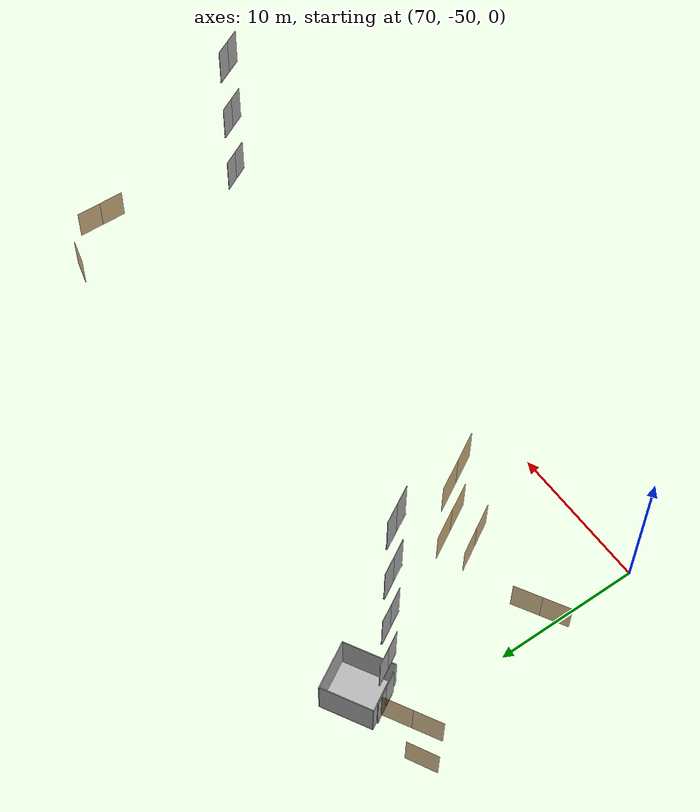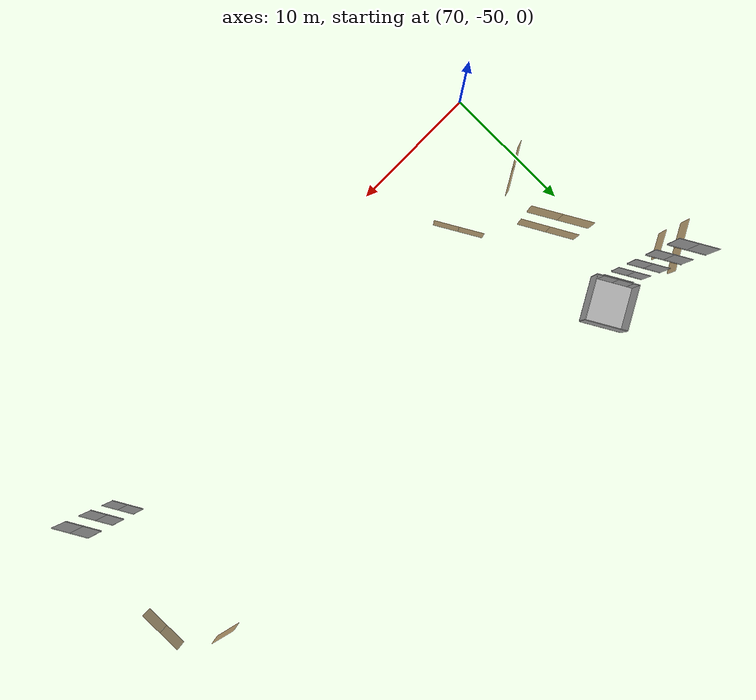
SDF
<sdf version="1.7">
 <world name="sim_world">
  <model name="puerta20">
   <pose>113.41983175228208 -37.8717021657419 0.0 0 0 -1.5573486832499999</pose>
   <link name="right">
    <pose>0.8997770784323755 0 1.11 0 0 0</pose>
    <visual name="right_visual">
     <geometry><box><size>1.789554156864751 0.03 2.2</size></box></geometry>
     <material>
      <ambient>0.5 0.25 0 0.6</ambient>
      <diffuse>0.5 0.25 0 0.6</diffuse>
      <pbr><metal><metalness>0.0</metalness></metal></pbr>
     </material>
    </visual>
    <collision name="right_collision">
     <geometry><box><size>1.789554156864751 0.03 2.2</size></box></geometry>
     <surface><contact><collide_bitmask>0x02</collide_bitmask></contact></surface>
    </collision>
    <inertial>
     <mass>50.0</mass>
     <inertia><ixx>20.17041666666667</ixx><iyy>33.51043366813297</iyy><izz>13.347517001466292</izz></inertia>
    </inertial>
   </link>
   <joint name="right_joint" type="revolute">
    <parent>world</parent>
    <child>right</child>
    <axis><xyz>0 0 -1</xyz><limit><lower>0</lower><upper>1.57</upper></limit></axis>
    <pose>0.8997770784323755 0 0 0 0 0</pose>
   </joint>
   <link name="left">
    <pose>-0.8997770784323755 0 1.11 0 0 0</pose>
    <visual name="left_visual">
     <geometry><box><size>1.789554156864751 0.03 2.2</size></box></geometry>
     <material>
      <ambient>0.5 0.25 0 0.6</ambient>
      <diffuse>0.5 0.25 0 0.6</diffuse>
      <pbr><metal><metalness>0.0</metalness></metal></pbr>
     </material>
    </visual>
    <collision name="left_collision">
     <geometry><box><size>1.789554156864751 0.03 2.2</size></box></geometry>
     <surface><contact><collide_bitmask>0x02</collide_bitmask></contact></surface>
    </collision>
    <inertial>
     <mass>50.0</mass>
     <inertia><ixx>20.17041666666667</ixx><iyy>33.51043366813297</iyy><izz>13.347517001466292</izz></inertia>
    </inertial>
   </link>
   <joint name="left_joint" type="revolute">
    <parent>world</parent>
    <child>left</child>
    <axis><xyz>0 0 -1</xyz><limit><lower>-1.57</lower><upper>0</upper></limit></axis>
    <pose>-0.8997770784323755 0 0 0 0 0</pose>
   </joint>
   <plugin name="register_component" filename="libregister_component.so">
    <component name="Door">
     <v_max_door>0.5</v_max_door>
     <a_max_door>0.3</a_max_door>
     <a_nom_door>0.15</a_nom_door>
     <dx_min_door>0.01</dx_min_door>
     <f_max_door>500.0</f_max_door>
     <ros_interface>true</ros_interface>
     <door name="puerta20" type="DoubleSwingDoor" left_joint_name="left_joint" right_joint_name="right_joint"/>
    </component>
   </plugin>
  </model>
  <model name="puerta21">
   <pose>70.95358868802577 -43.59432611419366 0.0 0 0 0.5295755033336558</pose>
   <link name="right">
    <pose>0.948866262881859 0 1.11 0 0 0</pose>
    <visual name="right_visual">
     <geometry><box><size>1.887732525763718 0.03 2.2</size></box></geometry>
     <material>
      <ambient>0.5 0.25 0 0.6</ambient>
      <diffuse>0.5 0.25 0 0.6</diffuse>
      <pbr><metal><metalness>0.0</metalness></metal></pbr>
     </material>
    </visual>
    <collision name="right_collision">
     <geometry><box><size>1.887732525763718 0.03 2.2</size></box></geometry>
     <surface><contact><collide_bitmask>0x02</collide_bitmask></contact></surface>
    </collision>
    <inertial>
     <mass>50.0</mass>
     <inertia><ixx>20.17041666666667</ixx><iyy>35.01472537010945</iyy><izz>14.85180870344278</izz></inertia>
    </inertial>
   </link>
   <joint name="right_joint" type="revolute">
    <parent>world</parent>
    <child>right</child>
    <axis><xyz>0 0 -1</xyz><limit><lower>0</lower><upper>1.57</upper></limit></axis>
    <pose>0.948866262881859 0 0 0 0 0</pose>
   </joint>
   <link name="left">
    <pose>-0.948866262881859 0 1.11 0 0 0</pose>
    <visual name="left_visual">
     <geometry><box><size>1.887732525763718 0.03 2.2</size></box></geometry>
     <material>
      <ambient>0.5 0.25 0 0.6</ambient>
      <diffuse>0.5 0.25 0 0.6</diffuse>
      <pbr><metal><metalness>0.0</metalness></metal></pbr>
     </material>
    </visual>
    <collision name="left_collision">
     <geometry><box><size>1.887732525763718 0.03 2.2</size></box></geometry>
     <surface><contact><collide_bitmask>0x02</collide_bitmask></contact></surface>
    </collision>
    <inertial>
     <mass>50.0</mass>
     <inertia><ixx>20.17041666666667</ixx><iyy>35.01472537010945</iyy><izz>14.85180870344278</izz></inertia>
    </inertial>
   </link>
   <joint name="left_joint" type="revolute">
    <parent>world</parent>
    <child>left</child>
    <axis><xyz>0 0 -1</xyz><limit><lower>-1.57</lower><upper>0</upper></limit></axis>
    <pose>-0.948866262881859 0 0 0 0 0</pose>
   </joint>
   <plugin name="register_component" filename="libregister_component.so">
    <component name="Door">
     <v_max_door>0.5</v_max_door>
     <a_max_door>0.3</a_max_door>
     <a_nom_door>0.15</a_nom_door>
     <dx_min_door>0.01</dx_min_door>
     <f_max_door>500.0</f_max_door>
     <ros_interface>true</ros_interface>
     <door name="puerta21" type="DoubleSwingDoor" left_joint_name="left_joint" right_joint_name="right_joint"/>
    </component>
   </plugin>
  </model>
  <model name="puerta26">
   <pose>77.00427778772149 -43.299230356184 0.0 0 0 2.096169444582715</pose>
   <link name="right">
    <pose>0.95245293144521 0 1.11 0 0 0</pose>
    <visual name="right_visual">
     <geometry><box><size>1.89490586289042 0.03 2.2</size></box></geometry>
     <material>
      <ambient>0.5 0.25 0 0.6</ambient>
      <diffuse>0.5 0.25 0 0.6</diffuse>
      <pbr><metal><metalness>0.0</metalness></metal></pbr>
     </material>
    </visual>
    <collision name="right_collision">
     <geometry><box><size>1.89490586289042 0.03 2.2</size></box></geometry>
     <surface><contact><collide_bitmask>0x02</collide_bitmask></contact></surface>
    </collision>
    <inertial>
     <mass>50.0</mass>
     <inertia><ixx>20.17041666666667</ixx><iyy>35.12778428840204</iyy><izz>14.964867621735367</izz></inertia>
    </inertial>
   </link>
   <joint name="right_joint" type="revolute">
    <parent>world</parent>
    <child>right</child>
    <axis><xyz>0 0 -1</xyz><limit><lower>0</lower><upper>1.57</upper></limit></axis>
    <pose>0.95245293144521 0 0 0 0 0</pose>
   </joint>
   <link name="left">
    <pose>-0.95245293144521 0 1.11 0 0 0</pose>
    <visual name="left_visual">
     <geometry><box><size>1.89490586289042 0.03 2.2</size></box></geometry>
     <material>
      <ambient>0.5 0.25 0 0.6</ambient>
      <diffuse>0.5 0.25 0 0.6</diffuse>
      <pbr><metal><metalness>0.0</metalness></metal></pbr>
     </material>
    </visual>
    <collision name="left_collision">
     <geometry><box><size>1.89490586289042 0.03 2.2</size></box></geometry>
     <surface><contact><collide_bitmask>0x02</collide_bitmask></contact></surface>
    </collision>
    <inertial>
     <mass>50.0</mass>
     <inertia><ixx>20.17041666666667</ixx><iyy>35.12778428840204</iyy><izz>14.964867621735367</izz></inertia>
    </inertial>
   </link>
   <joint name="left_joint" type="revolute">
    <parent>world</parent>
    <child>left</child>
    <axis><xyz>0 0 -1</xyz><limit><lower>-1.57</lower><upper>0</upper></limit></axis>
    <pose>-0.95245293144521 0 0 0 0 0</pose>
   </joint>
   <plugin name="register_component" filename="libregister_component.so">
    <component name="Door">
     <v_max_door>0.5</v_max_door>
     <a_max_door>0.3</a_max_door>
     <a_nom_door>0.15</a_nom_door>
     <dx_min_door>0.01</dx_min_door>
     <f_max_door>500.0</f_max_door>
     <ros_interface>true</ros_interface>
     <door name="puerta26" type="DoubleSwingDoor" left_joint_name="left_joint" right_joint_name="right_joint"/>
    </component>
   </plugin>
  </model>
  <model name="puerta43">
   <pose>110.38537676749597 -34.38689815643458 0.0 0 0 -0.24239064411101047</pose>
   <link name="right">
    <pose>0 0 1.11 0 0 0</pose>
    <visual name="right_visual">
     <geometry><box><size>1.892142040308572 0.03 2.2</size></box></geometry>
     <material>
      <ambient>0.5 0.25 0 0.6</ambient>
      <diffuse>0.5 0.25 0 0.6</diffuse>
      <pbr><metal><metalness>0.0</metalness></metal></pbr>
     </material>
    </visual>
    <collision name="right_collision">
     <geometry><box><size>1.892142040308572 0.03 2.2</size></box></geometry>
     <surface><contact><collide_bitmask>0x02</collide_bitmask></contact></surface>
    </collision>
    <inertial>
     <mass>50.0</mass>
     <inertia><ixx>20.17041666666667</ixx><iyy>35.0841729195962</iyy><izz>14.921256252929526</izz></inertia>
    </inertial>
   </link>
   <joint name="right_joint" type="revolute">
    <parent>world</parent>
    <child>right</child>
    <axis><xyz>0 0 1</xyz><limit><lower>0</lower><upper>1.57</upper></limit></axis>
    <pose>0.951071020154286 0 0 0 0 0</pose>
   </joint>
   <plugin name="register_component" filename="libregister_component.so">
    <component name="Door">
     <v_max_door>0.5</v_max_door>
     <a_max_door>0.3</a_max_door>
     <a_nom_door>0.15</a_nom_door>
     <dx_min_door>0.01</dx_min_door>
     <f_max_door>500.0</f_max_door>
     <ros_interface>true</ros_interface>
     <door name="puerta43" type="SwingDoor" left_joint_name="empty_joint" right_joint_name="right_joint"/>
    </component>
   </plugin>
  </model>
  <model name="puerta44">
   <pose>67.33986039019152 -31.951351351351352 0.0 0 0 -2.6398853652504064</pose>
   <link name="right">
    <pose>0 0 1.11 0 0 0</pose>
    <visual name="right_visual">
     <geometry><box><size>2.06925996760185 0.03 2.2</size></box></geometry>
     <material>
      <ambient>0.5 0.25 0 0.6</ambient>
      <diffuse>0.5 0.25 0 0.6</diffuse>
      <pbr><metal><metalness>0.0</metalness></metal></pbr>
     </material>
    </visual>
    <collision name="right_collision">
     <geometry><box><size>2.06925996760185 0.03 2.2</size></box></geometry>
     <surface><contact><collide_bitmask>0x02</collide_bitmask></contact></surface>
    </collision>
    <inertial>
     <mass>50.0</mass>
     <inertia><ixx>20.17041666666667</ixx><iyy>38.007653389665045</iyy><izz>17.844736722998373</izz></inertia>
    </inertial>
   </link>
   <joint name="right_joint" type="revolute">
    <parent>world</parent>
    <child>right</child>
    <axis><xyz>0 0 -1</xyz><limit><lower>0</lower><upper>1.57</upper></limit></axis>
    <pose>1.0396299838009249 0 0 0 0 0</pose>
   </joint>
   <plugin name="register_component" filename="libregister_component.so">
    <component name="Door">
     <v_max_door>0.5</v_max_door>
     <a_max_door>0.3</a_max_door>
     <a_nom_door>0.15</a_nom_door>
     <dx_min_door>0.01</dx_min_door>
     <f_max_door>500.0</f_max_door>
     <ros_interface>true</ros_interface>
     <door name="puerta44" type="SwingDoor" left_joint_name="empty_joint" right_joint_name="right_joint"/>
    </component>
   </plugin>
  </model>
  <model name="puerta3149">
   <pose>67.82048512959187 -31.380725306936533 5.0 0 0 0.5186912308597346</pose>
   <link name="right">
    <pose>0.9263399994701139 0 1.11 0 0 0</pose>
    <visual name="right_visual">
     <geometry><box><size>1.8426799989402278 0.03 2.2</size></box></geometry>
     <material>
      <ambient>0.5 0.25 0 0.6</ambient>
      <diffuse>0.5 0.25 0 0.6</diffuse>
      <pbr><metal><metalness>0.0</metalness></metal></pbr>
     </material>
    </visual>
    <collision name="right_collision">
     <geometry><box><size>1.8426799989402278 0.03 2.2</size></box></geometry>
     <surface><contact><collide_bitmask>0x02</collide_bitmask></contact></surface>
    </collision>
    <inertial>
     <mass>50.0</mass>
     <inertia><ixx>20.17041666666667</ixx><iyy>34.31445657705983</iyy><izz>14.15153991039316</izz></inertia>
    </inertial>
   </link>
   <joint name="right_joint" type="revolute">
    <parent>world</parent>
    <child>right</child>
    <axis><xyz>0 0 -1</xyz><limit><lower>0</lower><upper>1.57</upper></limit></axis>
    <pose>0.9263399994701139 0 0 0 0 0</pose>
   </joint>
   <link name="left">
    <pose>-0.9263399994701139 0 1.11 0 0 0</pose>
    <visual name="left_visual">
     <geometry><box><size>1.8426799989402278 0.03 2.2</size></box></geometry>
     <material>
      <ambient>0.5 0.25 0 0.6</ambient>
      <diffuse>0.5 0.25 0 0.6</diffuse>
      <pbr><metal><metalness>0.0</metalness></metal></pbr>
     </material>
    </visual>
    <collision name="left_collision">
     <geometry><box><size>1.8426799989402278 0.03 2.2</size></box></geometry>
     <surface><contact><collide_bitmask>0x02</collide_bitmask></contact></surface>
    </collision>
    <inertial>
     <mass>50.0</mass>
     <inertia><ixx>20.17041666666667</ixx><iyy>34.31445657705983</iyy><izz>14.15153991039316</izz></inertia>
    </inertial>
   </link>
   <joint name="left_joint" type="revolute">
    <parent>world</parent>
    <child>left</child>
    <axis><xyz>0 0 -1</xyz><limit><lower>-1.57</lower><upper>0</upper></limit></axis>
    <pose>-0.9263399994701139 0 0 0 0 0</pose>
   </joint>
   <plugin name="register_component" filename="libregister_component.so">
    <component name="Door">
     <v_max_door>0.5</v_max_door>
     <a_max_door>0.3</a_max_door>
     <a_nom_door>0.15</a_nom_door>
     <dx_min_door>0.01</dx_min_door>
     <f_max_door>500.0</f_max_door>
     <ros_interface>true</ros_interface>
     <door name="puerta3149" type="DoubleSwingDoor" left_joint_name="left_joint" right_joint_name="right_joint"/>
    </component>
   </plugin>
  </model>
  <model name="puerta5248">
   <pose>74.35101207835734 -38.63227372645091 10.0 0 0 2.0870022981172482</pose>
   <link name="right">
    <pose>0.9563593896910048 0 1.11 0 0 0</pose>
    <visual name="right_visual">
     <geometry><box><size>1.9027187793820095 0.03 2.2</size></box></geometry>
     <material>
      <ambient>0.5 0.25 0 0.6</ambient>
      <diffuse>0.5 0.25 0 0.6</diffuse>
      <pbr><metal><metalness>0.0</metalness></metal></pbr>
     </material>
    </visual>
    <collision name="right_collision">
     <geometry><box><size>1.9027187793820095 0.03 2.2</size></box></geometry>
     <surface><contact><collide_bitmask>0x02</collide_bitmask></contact></surface>
    </collision>
    <inertial>
     <mass>50.0</mass>
     <inertia><ixx>20.17041666666667</ixx><iyy>35.251411472554025</iyy><izz>15.088494805887352</izz></inertia>
    </inertial>
   </link>
   <joint name="right_joint" type="revolute">
    <parent>world</parent>
    <child>right</child>
    <axis><xyz>0 0 -1</xyz><limit><lower>0</lower><upper>1.57</upper></limit></axis>
    <pose>0.9563593896910048 0 0 0 0 0</pose>
   </joint>
   <link name="left">
    <pose>-0.9563593896910048 0 1.11 0 0 0</pose>
    <visual name="left_visual">
     <geometry><box><size>1.9027187793820095 0.03 2.2</size></box></geometry>
     <material>
      <ambient>0.5 0.25 0 0.6</ambient>
      <diffuse>0.5 0.25 0 0.6</diffuse>
      <pbr><metal><metalness>0.0</metalness></metal></pbr>
     </material>
    </visual>
    <collision name="left_collision">
     <geometry><box><size>1.9027187793820095 0.03 2.2</size></box></geometry>
     <surface><contact><collide_bitmask>0x02</collide_bitmask></contact></surface>
    </collision>
    <inertial>
     <mass>50.0</mass>
     <inertia><ixx>20.17041666666667</ixx><iyy>35.251411472554025</iyy><izz>15.088494805887352</izz></inertia>
    </inertial>
   </link>
   <joint name="left_joint" type="revolute">
    <parent>world</parent>
    <child>left</child>
    <axis><xyz>0 0 -1</xyz><limit><lower>-1.57</lower><upper>0</upper></limit></axis>
    <pose>-0.9563593896910048 0 0 0 0 0</pose>
   </joint>
   <plugin name="register_component" filename="libregister_component.so">
    <component name="Door">
     <v_max_door>0.5</v_max_door>
     <a_max_door>0.3</a_max_door>
     <a_nom_door>0.15</a_nom_door>
     <dx_min_door>0.01</dx_min_door>
     <f_max_door>500.0</f_max_door>
     <ros_interface>true</ros_interface>
     <door name="puerta5248" type="DoubleSwingDoor" left_joint_name="left_joint" right_joint_name="right_joint"/>
    </component>
   </plugin>
  </model>
  <model name="puerta7184">
   <pose>74.32538697532745 -38.62929628016438 15.0 0 0 2.093460955720228</pose>
   <link name="right">
    <pose>0.9654415812171626 0 1.11 0 0 0</pose>
    <visual name="right_visual">
     <geometry><box><size>1.9208831624343252 0.03 2.2</size></box></geometry>
     <material>
      <ambient>0.5 0.25 0 0.6</ambient>
      <diffuse>0.5 0.25 0 0.6</diffuse>
      <pbr><metal><metalness>0.0</metalness></metal></pbr>
     </material>
    </visual>
    <collision name="right_collision">
     <geometry><box><size>1.9208831624343252 0.03 2.2</size></box></geometry>
     <surface><contact><collide_bitmask>0x02</collide_bitmask></contact></surface>
    </collision>
    <inertial>
     <mass>50.0</mass>
     <inertia><ixx>20.17041666666667</ixx><iyy>35.5408005155154</iyy><izz>15.377883848848727</izz></inertia>
    </inertial>
   </link>
   <joint name="right_joint" type="revolute">
    <parent>world</parent>
    <child>right</child>
    <axis><xyz>0 0 -1</xyz><limit><lower>0</lower><upper>1.57</upper></limit></axis>
    <pose>0.9654415812171626 0 0 0 0 0</pose>
   </joint>
   <link name="left">
    <pose>-0.9654415812171626 0 1.11 0 0 0</pose>
    <visual name="left_visual">
     <geometry><box><size>1.9208831624343252 0.03 2.2</size></box></geometry>
     <material>
      <ambient>0.5 0.25 0 0.6</ambient>
      <diffuse>0.5 0.25 0 0.6</diffuse>
      <pbr><metal><metalness>0.0</metalness></metal></pbr>
     </material>
    </visual>
    <collision name="left_collision">
     <geometry><box><size>1.9208831624343252 0.03 2.2</size></box></geometry>
     <surface><contact><collide_bitmask>0x02</collide_bitmask></contact></surface>
    </collision>
    <inertial>
     <mass>50.0</mass>
     <inertia><ixx>20.17041666666667</ixx><iyy>35.5408005155154</iyy><izz>15.377883848848727</izz></inertia>
    </inertial>
   </link>
   <joint name="left_joint" type="revolute">
    <parent>world</parent>
    <child>left</child>
    <axis><xyz>0 0 -1</xyz><limit><lower>-1.57</lower><upper>0</upper></limit></axis>
    <pose>-0.9654415812171626 0 0 0 0 0</pose>
   </joint>
   <plugin name="register_component" filename="libregister_component.so">
    <component name="Door">
     <v_max_door>0.5</v_max_door>
     <a_max_door>0.3</a_max_door>
     <a_nom_door>0.15</a_nom_door>
     <dx_min_door>0.01</dx_min_door>
     <f_max_door>500.0</f_max_door>
     <ros_interface>true</ros_interface>
     <door name="puerta7184" type="DoubleSwingDoor" left_joint_name="left_joint" right_joint_name="right_joint"/>
    </component>
   </plugin>
  </model>
  <model name="ShaftDoor_lift_1_L0_name">
   <pose>71.4653072470899 -32.397328262077664 0.0 0 0 -1.05</pose>
   <link name="right_door">
    <pose>0.5625 0 1.25 0 0 0</pose>
    <visual name="right_door_visual">
     <geometry><box><size>1.125 0.03 2.5</size></box></geometry>
     <material>
      <ambient>0.5 0.5 0.5 1</ambient>
      <diffuse>0.7 0.7 0.7 1</diffuse>
      <specular>0.6 0.6 0.6 1</specular>
      <emissive>0.1 0.1 0.1 1</emissive>
     </material>
    </visual>
    <collision name="right_door_collision">
     <geometry><box><size>1.125 0.03 2.5</size></box></geometry>
     <surface><contact><collide_bitmask>0x02</collide_bitmask></contact></surface>
    </collision>
   </link>
   <link name="left_door">
    <pose>-0.5625 0 1.25 0 0 0</pose>
    <visual name="left_door_visual">
     <geometry><box><size>1.125 0.03 2.5</size></box></geometry>
     <material>
      <ambient>0.5 0.5 0.5 1</ambient>
      <diffuse>0.7 0.7 0.7 1</diffuse>
      <specular>0.6 0.6 0.6 1</specular>
      <emissive>0.1 0.1 0.1 1</emissive>
     </material>
    </visual>
    <collision name="left_door_collision">
     <geometry><box><size>1.125 0.03 2.5</size></box></geometry>
     <surface><contact><collide_bitmask>0x02</collide_bitmask></contact></surface>
    </collision>
   </link>
   <joint name="right_joint" type="prismatic">
    <parent>world</parent>
    <child>right_door</child>
    <axis><xyz>1 0 0</xyz><limit><lower>0</lower><upper>1.125</upper></limit></axis>
   </joint>
   <joint name="left_joint" type="prismatic">
    <parent>world</parent>
    <child>left_door</child>
    <axis><xyz>1 0 0</xyz><limit><lower>-1.125</lower><upper>0</upper></limit></axis>
   </joint>
   <link name="ramp">
    <pose>0 0 -0.025 0 0 0</pose>
    <visual name="ramp_visual">
     <geometry><box><size>2.25 0.1 0.05</size></box></geometry>
     <material>
      <ambient>0.5 0.5 0.5 1</ambient>
      <diffuse>0.7 0.7 0.7 1</diffuse>
      <specular>0.6 0.6 0.6 1</specular>
      <emissive>0.1 0.1 0.1 1</emissive>
     </material>
    </visual>
    <collision name="ramp_collision">
     <geometry><box><size>2.25 0.1 0.05</size></box></geometry>
     <surface><contact><collide_bitmask>0x02</collide_bitmask></contact></surface>
    </collision>
   </link>
   <joint name="ramp_joint" type="fixed"><parent>world</parent><child>ramp</child></joint>
   <plugin name="register_component" filename="libregister_component.so">
    <component name="Door">
     <v_max_door>0.3</v_max_door>
     <a_max_door>0.2</a_max_door>
     <a_nom_door>0.1</a_nom_door>
     <dx_min_door>0.0001</dx_min_door>
     <f_max_door>35.0</f_max_door>
     <door left_joint_name="left_joint" name="ShaftDoor_lift_1_L0_name" right_joint_name="right_joint" type="DoubleSlidingDoor"/>
    </component>
   </plugin>
  </model>
  <model name="ShaftDoor_lift_1_L1_name">
   <pose>71.4653072470899 -32.397328262077664 5.0 0 0 -1.05</pose>
   <link name="right_door">
    <pose>0.5625 0 1.25 0 0 0</pose>
    <visual name="right_door_visual">
     <geometry><box><size>1.125 0.03 2.5</size></box></geometry>
     <material>
      <ambient>0.5 0.5 0.5 1</ambient>
      <diffuse>0.7 0.7 0.7 1</diffuse>
      <specular>0.6 0.6 0.6 1</specular>
      <emissive>0.1 0.1 0.1 1</emissive>
     </material>
    </visual>
    <collision name="right_door_collision">
     <geometry><box><size>1.125 0.03 2.5</size></box></geometry>
     <surface><contact><collide_bitmask>0x02</collide_bitmask></contact></surface>
    </collision>
   </link>
   <link name="left_door">
    <pose>-0.5625 0 1.25 0 0 0</pose>
    <visual name="left_door_visual">
     <geometry><box><size>1.125 0.03 2.5</size></box></geometry>
     <material>
      <ambient>0.5 0.5 0.5 1</ambient>
      <diffuse>0.7 0.7 0.7 1</diffuse>
      <specular>0.6 0.6 0.6 1</specular>
      <emissive>0.1 0.1 0.1 1</emissive>
     </material>
    </visual>
    <collision name="left_door_collision">
     <geometry><box><size>1.125 0.03 2.5</size></box></geometry>
     <surface><contact><collide_bitmask>0x02</collide_bitmask></contact></surface>
    </collision>
   </link>
   <joint name="right_joint" type="prismatic">
    <parent>world</parent>
    <child>right_door</child>
    <axis><xyz>1 0 0</xyz><limit><lower>0</lower><upper>1.125</upper></limit></axis>
   </joint>
   <joint name="left_joint" type="prismatic">
    <parent>world</parent>
    <child>left_door</child>
    <axis><xyz>1 0 0</xyz><limit><lower>-1.125</lower><upper>0</upper></limit></axis>
   </joint>
   <link name="ramp">
    <pose>0 0 -0.025 0 0 0</pose>
    <visual name="ramp_visual">
     <geometry><box><size>2.25 0.1 0.05</size></box></geometry>
     <material>
      <ambient>0.5 0.5 0.5 1</ambient>
      <diffuse>0.7 0.7 0.7 1</diffuse>
      <specular>0.6 0.6 0.6 1</specular>
      <emissive>0.1 0.1 0.1 1</emissive>
     </material>
    </visual>
    <collision name="ramp_collision">
     <geometry><box><size>2.25 0.1 0.05</size></box></geometry>
     <surface><contact><collide_bitmask>0x02</collide_bitmask></contact></surface>
    </collision>
   </link>
   <joint name="ramp_joint" type="fixed"><parent>world</parent><child>ramp</child></joint>
   <plugin name="register_component" filename="libregister_component.so">
    <component name="Door">
     <v_max_door>0.3</v_max_door>
     <a_max_door>0.2</a_max_door>
     <a_nom_door>0.1</a_nom_door>
     <dx_min_door>0.0001</dx_min_door>
     <f_max_door>35.0</f_max_door>
     <door left_joint_name="left_joint" name="ShaftDoor_lift_1_L1_name" right_joint_name="right_joint" type="DoubleSlidingDoor"/>
    </component>
   </plugin>
  </model>
  <model name="ShaftDoor_lift_1_L2_name">
   <pose>71.4653072470899 -32.397328262077664 10.0 0 0 -1.05</pose>
   <link name="right_door">
    <pose>0.5625 0 1.25 0 0 0</pose>
    <visual name="right_door_visual">
     <geometry><box><size>1.125 0.03 2.5</size></box></geometry>
     <material>
      <ambient>0.5 0.5 0.5 1</ambient>
      <diffuse>0.7 0.7 0.7 1</diffuse>
      <specular>0.6 0.6 0.6 1</specular>
      <emissive>0.1 0.1 0.1 1</emissive>
     </material>
    </visual>
    <collision name="right_door_collision">
     <geometry><box><size>1.125 0.03 2.5</size></box></geometry>
     <surface><contact><collide_bitmask>0x02</collide_bitmask></contact></surface>
    </collision>
   </link>
   <link name="left_door">
    <pose>-0.5625 0 1.25 0 0 0</pose>
    <visual name="left_door_visual">
     <geometry><box><size>1.125 0.03 2.5</size></box></geometry>
     <material>
      <ambient>0.5 0.5 0.5 1</ambient>
      <diffuse>0.7 0.7 0.7 1</diffuse>
      <specular>0.6 0.6 0.6 1</specular>
      <emissive>0.1 0.1 0.1 1</emissive>
     </material>
    </visual>
    <collision name="left_door_collision">
     <geometry><box><size>1.125 0.03 2.5</size></box></geometry>
     <surface><contact><collide_bitmask>0x02</collide_bitmask></contact></surface>
    </collision>
   </link>
   <joint name="right_joint" type="prismatic">
    <parent>world</parent>
    <child>right_door</child>
    <axis><xyz>1 0 0</xyz><limit><lower>0</lower><upper>1.125</upper></limit></axis>
   </joint>
   <joint name="left_joint" type="prismatic">
    <parent>world</parent>
    <child>left_door</child>
    <axis><xyz>1 0 0</xyz><limit><lower>-1.125</lower><upper>0</upper></limit></axis>
   </joint>
   <link name="ramp">
    <pose>0 0 -0.025 0 0 0</pose>
    <visual name="ramp_visual">
     <geometry><box><size>2.25 0.1 0.05</size></box></geometry>
     <material>
      <ambient>0.5 0.5 0.5 1</ambient>
      <diffuse>0.7 0.7 0.7 1</diffuse>
      <specular>0.6 0.6 0.6 1</specular>
      <emissive>0.1 0.1 0.1 1</emissive>
     </material>
    </visual>
    <collision name="ramp_collision">
     <geometry><box><size>2.25 0.1 0.05</size></box></geometry>
     <surface><contact><collide_bitmask>0x02</collide_bitmask></contact></surface>
    </collision>
   </link>
   <joint name="ramp_joint" type="fixed"><parent>world</parent><child>ramp</child></joint>
   <plugin name="register_component" filename="libregister_component.so">
    <component name="Door">
     <v_max_door>0.3</v_max_door>
     <a_max_door>0.2</a_max_door>
     <a_nom_door>0.1</a_nom_door>
     <dx_min_door>0.0001</dx_min_door>
     <f_max_door>35.0</f_max_door>
     <door left_joint_name="left_joint" name="ShaftDoor_lift_1_L2_name" right_joint_name="right_joint" type="DoubleSlidingDoor"/>
    </component>
   </plugin>
  </model>
  <model name="ShaftDoor_lift_1_L3_name">
   <pose>71.4653072470899 -32.397328262077664 15.0 0 0 -1.05</pose>
   <link name="right_door">
    <pose>0.5625 0 1.25 0 0 0</pose>
    <visual name="right_door_visual">
     <geometry><box><size>1.125 0.03 2.5</size></box></geometry>
     <material>
      <ambient>0.5 0.5 0.5 1</ambient>
      <diffuse>0.7 0.7 0.7 1</diffuse>
      <specular>0.6 0.6 0.6 1</specular>
      <emissive>0.1 0.1 0.1 1</emissive>
     </material>
    </visual>
    <collision name="right_door_collision">
     <geometry><box><size>1.125 0.03 2.5</size></box></geometry>
     <surface><contact><collide_bitmask>0x02</collide_bitmask></contact></surface>
    </collision>
   </link>
   <link name="left_door">
    <pose>-0.5625 0 1.25 0 0 0</pose>
    <visual name="left_door_visual">
     <geometry><box><size>1.125 0.03 2.5</size></box></geometry>
     <material>
      <ambient>0.5 0.5 0.5 1</ambient>
      <diffuse>0.7 0.7 0.7 1</diffuse>
      <specular>0.6 0.6 0.6 1</specular>
      <emissive>0.1 0.1 0.1 1</emissive>
     </material>
    </visual>
    <collision name="left_door_collision">
     <geometry><box><size>1.125 0.03 2.5</size></box></geometry>
     <surface><contact><collide_bitmask>0x02</collide_bitmask></contact></surface>
    </collision>
   </link>
   <joint name="right_joint" type="prismatic">
    <parent>world</parent>
    <child>right_door</child>
    <axis><xyz>1 0 0</xyz><limit><lower>0</lower><upper>1.125</upper></limit></axis>
   </joint>
   <joint name="left_joint" type="prismatic">
    <parent>world</parent>
    <child>left_door</child>
    <axis><xyz>1 0 0</xyz><limit><lower>-1.125</lower><upper>0</upper></limit></axis>
   </joint>
   <link name="ramp">
    <pose>0 0 -0.025 0 0 0</pose>
    <visual name="ramp_visual">
     <geometry><box><size>2.25 0.1 0.05</size></box></geometry>
     <material>
      <ambient>0.5 0.5 0.5 1</ambient>
      <diffuse>0.7 0.7 0.7 1</diffuse>
      <specular>0.6 0.6 0.6 1</specular>
      <emissive>0.1 0.1 0.1 1</emissive>
     </material>
    </visual>
    <collision name="ramp_collision">
     <geometry><box><size>2.25 0.1 0.05</size></box></geometry>
     <surface><contact><collide_bitmask>0x02</collide_bitmask></contact></surface>
    </collision>
   </link>
   <joint name="ramp_joint" type="fixed"><parent>world</parent><child>ramp</child></joint>
   <plugin name="register_component" filename="libregister_component.so">
    <component name="Door">
     <v_max_door>0.3</v_max_door>
     <a_max_door>0.2</a_max_door>
     <a_nom_door>0.1</a_nom_door>
     <dx_min_door>0.0001</dx_min_door>
     <f_max_door>35.0</f_max_door>
     <door left_joint_name="left_joint" name="ShaftDoor_lift_1_L3_name" right_joint_name="right_joint" type="DoubleSlidingDoor"/>
    </component>
   </plugin>
  </model>
  <model name="ShaftDoor_lift_1_L4_name">
   <pose>71.4653072470899 -32.397328262077664 20.0 0 0 -1.05</pose>
   <link name="right_door">
    <pose>0.5625 0 1.25 0 0 0</pose>
    <visual name="right_door_visual">
     <geometry><box><size>1.125 0.03 2.5</size></box></geometry>
     <material>
      <ambient>0.5 0.5 0.5 1</ambient>
      <diffuse>0.7 0.7 0.7 1</diffuse>
      <specular>0.6 0.6 0.6 1</specular>
      <emissive>0.1 0.1 0.1 1</emissive>
     </material>
    </visual>
    <collision name="right_door_collision">
     <geometry><box><size>1.125 0.03 2.5</size></box></geometry>
     <surface><contact><collide_bitmask>0x02</collide_bitmask></contact></surface>
    </collision>
   </link>
   <link name="left_door">
    <pose>-0.5625 0 1.25 0 0 0</pose>
    <visual name="left_door_visual">
     <geometry><box><size>1.125 0.03 2.5</size></box></geometry>
     <material>
      <ambient>0.5 0.5 0.5 1</ambient>
      <diffuse>0.7 0.7 0.7 1</diffuse>
      <specular>0.6 0.6 0.6 1</specular>
      <emissive>0.1 0.1 0.1 1</emissive>
     </material>
    </visual>
    <collision name="left_door_collision">
     <geometry><box><size>1.125 0.03 2.5</size></box></geometry>
     <surface><contact><collide_bitmask>0x02</collide_bitmask></contact></surface>
    </collision>
   </link>
   <joint name="right_joint" type="prismatic">
    <parent>world</parent>
    <child>right_door</child>
    <axis><xyz>1 0 0</xyz><limit><lower>0</lower><upper>1.125</upper></limit></axis>
   </joint>
   <joint name="left_joint" type="prismatic">
    <parent>world</parent>
    <child>left_door</child>
    <axis><xyz>1 0 0</xyz><limit><lower>-1.125</lower><upper>0</upper></limit></axis>
   </joint>
   <link name="ramp">
    <pose>0 0 -0.025 0 0 0</pose>
    <visual name="ramp_visual">
     <geometry><box><size>2.25 0.1 0.05</size></box></geometry>
     <material>
      <ambient>0.5 0.5 0.5 1</ambient>
      <diffuse>0.7 0.7 0.7 1</diffuse>
      <specular>0.6 0.6 0.6 1</specular>
      <emissive>0.1 0.1 0.1 1</emissive>
     </material>
    </visual>
    <collision name="ramp_collision">
     <geometry><box><size>2.25 0.1 0.05</size></box></geometry>
     <surface><contact><collide_bitmask>0x02</collide_bitmask></contact></surface>
    </collision>
   </link>
   <joint name="ramp_joint" type="fixed"><parent>world</parent><child>ramp</child></joint>
   <plugin name="register_component" filename="libregister_component.so">
    <component name="Door">
     <v_max_door>0.3</v_max_door>
     <a_max_door>0.2</a_max_door>
     <a_nom_door>0.1</a_nom_door>
     <dx_min_door>0.0001</dx_min_door>
     <f_max_door>35.0</f_max_door>
     <door left_joint_name="left_joint" name="ShaftDoor_lift_1_L4_name" right_joint_name="right_joint" type="DoubleSlidingDoor"/>
    </component>
   </plugin>
  </model>
  <model name="lift_1">
   <link name="platform">
    <inertial><mass>1200</mass><inertia><ixx>1056.5</ixx><iyy>1225.25</iyy><izz>2281.25</izz></inertia></inertial>
    <visual name="floor_visual">
     <pose>0 0 -0.025 0 0 0</pose>
     <geometry><box><size>3.25 3.5 0.05</size></box></geometry>
     <material>
      <ambient>0.5 0.5 0.5 1</ambient>
      <diffuse>0.7 0.7 0.7 1</diffuse>
      <specular>0.6 0.6 0.6 1</specular>
      <emissive>0.1 0.1 0.1 1</emissive>
     </material>
    </visual>
    <collision name="floor_collision">
     <pose>0 0 -0.025 0 0 0</pose>
     <geometry><box><size>3.25 3.5 0.05</size></box></geometry>
     <surface><contact><collide_bitmask>0x01</collide_bitmask></contact></surface>
    </collision>
    <visual name="frontwall1_visual">
     <pose>0.0 1.725 1.25 0 0 0</pose>
     <geometry><box><size>3.25 0.05 2.5</size></box></geometry>
     <material>
      <ambient>0.5 0.5 0.5 1</ambient>
      <diffuse>0.7 0.7 0.7 1</diffuse>
      <specular>0.6 0.6 0.6 1</specular>
      <emissive>0.1 0.1 0.1 1</emissive>
     </material>
    </visual>
    <collision name="frontwall1_collision">
     <pose>0.0 1.725 1.25 0 0 0</pose>
     <geometry><box><size>3.25 0.05 2.5</size></box></geometry>
     <surface><contact><collide_bitmask>0x01</collide_bitmask></contact></surface>
    </collision>
    <visual name="backwall1_visual">
     <pose>-1.375 -1.725 1.25 0 0 0</pose>
     <geometry><box><size>0.5 0.05 2.5</size></box></geometry>
     <material>
      <ambient>0.5 0.5 0.5 1</ambient>
      <diffuse>0.7 0.7 0.7 1</diffuse>
      <specular>0.6 0.6 0.6 1</specular>
      <emissive>0.1 0.1 0.1 1</emissive>
     </material>
    </visual>
    <collision name="backwall1_collision">
     <pose>-1.375 -1.725 1.25 0 0 0</pose>
     <geometry><box><size>0.5 0.05 2.5</size></box></geometry>
     <surface><contact><collide_bitmask>0x01</collide_bitmask></contact></surface>
    </collision>
    <visual name="backwall2_visual">
     <pose>1.375 -1.725 1.25 0 0 0</pose>
     <geometry><box><size>0.5 0.05 2.5</size></box></geometry>
     <material>
      <ambient>0.5 0.5 0.5 1</ambient>
      <diffuse>0.7 0.7 0.7 1</diffuse>
      <specular>0.6 0.6 0.6 1</specular>
      <emissive>0.1 0.1 0.1 1</emissive>
     </material>
    </visual>
    <collision name="backwall2_collision">
     <pose>1.375 -1.725 1.25 0 0 0</pose>
     <geometry><box><size>0.5 0.05 2.5</size></box></geometry>
     <surface><contact><collide_bitmask>0x01</collide_bitmask></contact></surface>
    </collision>
    <visual name="leftwall1_visual">
     <pose>-1.6 0.0 1.25 0 0 1.5707963267948966</pose>
     <geometry><box><size>3.4 0.05 2.5</size></box></geometry>
     <material>
      <ambient>0.5 0.5 0.5 1</ambient>
      <diffuse>0.7 0.7 0.7 1</diffuse>
      <specular>0.6 0.6 0.6 1</specular>
      <emissive>0.1 0.1 0.1 1</emissive>
     </material>
    </visual>
    <collision name="leftwall1_collision">
     <pose>-1.6 0.0 1.25 0 0 1.5707963267948966</pose>
     <geometry><box><size>3.4 0.05 2.5</size></box></geometry>
     <surface><contact><collide_bitmask>0x01</collide_bitmask></contact></surface>
    </collision>
    <visual name="rightwall1_visual">
     <pose>1.6 0.0 1.25 0 0 1.5707963267948966</pose>
     <geometry><box><size>3.4 0.05 2.5</size></box></geometry>
     <material>
      <ambient>0.5 0.5 0.5 1</ambient>
      <diffuse>0.7 0.7 0.7 1</diffuse>
      <specular>0.6 0.6 0.6 1</specular>
      <emissive>0.1 0.1 0.1 1</emissive>
     </material>
    </visual>
    <collision name="rightwall1_collision">
     <pose>1.6 0.0 1.25 0 0 1.5707963267948966</pose>
     <geometry><box><size>3.4 0.05 2.5</size></box></geometry>
     <surface><contact><collide_bitmask>0x01</collide_bitmask></contact></surface>
    </collision>
   </link>
   <joint name="cabin_joint" type="prismatic">
    <parent>world</parent>
    <child>platform</child>
    <axis><xyz>0 0 1</xyz></axis>
   </joint>
   <model name="CabinDoor_lift_1_name">
    <pose>0.0 -1.725 0 0 0 0.0</pose>
    <link name="right_door">
     <pose>0.5625 0 1.25 0 0 0</pose>
     <visual name="right_door_visual">
      <geometry><box><size>1.125 0.03 2.5</size></box></geometry>
      <material>
       <ambient>0.5 0.5 0.5 1</ambient>
       <diffuse>0.7 0.7 0.7 1</diffuse>
       <specular>0.6 0.6 0.6 1</specular>
       <emissive>0.1 0.1 0.1 1</emissive>
      </material>
     </visual>
     <collision name="right_door_collision">
      <geometry><box><size>1.125 0.03 2.5</size></box></geometry>
      <surface><contact><collide_bitmask>0x02</collide_bitmask></contact></surface>
     </collision>
    </link>
    <link name="left_door">
     <pose>-0.5625 0 1.25 0 0 0</pose>
     <visual name="left_door_visual">
      <geometry><box><size>1.125 0.03 2.5</size></box></geometry>
      <material>
       <ambient>0.5 0.5 0.5 1</ambient>
       <diffuse>0.7 0.7 0.7 1</diffuse>
       <specular>0.6 0.6 0.6 1</specular>
       <emissive>0.1 0.1 0.1 1</emissive>
      </material>
     </visual>
     <collision name="left_door_collision">
      <geometry><box><size>1.125 0.03 2.5</size></box></geometry>
      <surface><contact><collide_bitmask>0x02</collide_bitmask></contact></surface>
     </collision>
    </link>
    <plugin name="register_component" filename="libregister_component.so">
     <component name="Door">
      <v_max_door>0.3</v_max_door>
      <a_max_door>0.2</a_max_door>
      <a_nom_door>0.1</a_nom_door>
      <dx_min_door>0.0001</dx_min_door>
      <f_max_door>35.0</f_max_door>
      <door left_joint_name="CabinDoor_lift_1_name_left_joint" name="CabinDoor_lift_1_name" right_joint_name="CabinDoor_lift_1_name_right_joint" type="DoubleSlidingDoor"/>
     </component>
    </plugin>
   </model>
   <joint name="CabinDoor_lift_1_name_right_joint" type="prismatic">
    <parent>platform</parent>
    <child>CabinDoor_lift_1_name::right_door</child>
    <axis><xyz>1 0 0</xyz><limit><lower>0</lower><upper>1.125</upper></limit></axis>
   </joint>
   <joint name="CabinDoor_lift_1_name_left_joint" type="prismatic">
    <parent>platform</parent>
    <child>CabinDoor_lift_1_name::left_door</child>
    <axis><xyz>1 0 0</xyz><limit><lower>-1.125</lower><upper>0</upper></limit></axis>
   </joint>
   <plugin name="register_component" filename="libregister_component.so">
    <component name="Lift">
     <lift_name>lift_1</lift_name>
     <floor name="L0" elevation="0.0">
      <door_pair cabin_door="CabinDoor_lift_1_name" shaft_door="ShaftDoor_lift_1_L0_name"/>
     </floor>
     <floor name="L1" elevation="5.0">
      <door_pair cabin_door="CabinDoor_lift_1_name" shaft_door="ShaftDoor_lift_1_L1_name"/>
     </floor>
     <floor name="L2" elevation="10.0">
      <door_pair cabin_door="CabinDoor_lift_1_name" shaft_door="ShaftDoor_lift_1_L2_name"/>
     </floor>
     <floor name="L3" elevation="15.0">
      <door_pair cabin_door="CabinDoor_lift_1_name" shaft_door="ShaftDoor_lift_1_L3_name"/>
     </floor>
     <floor name="L4" elevation="20.0">
      <door_pair cabin_door="CabinDoor_lift_1_name" shaft_door="ShaftDoor_lift_1_L4_name"/>
     </floor>
     <initial_floor>L0</initial_floor>
     <v_max_cabin>2.0</v_max_cabin>
     <a_max_cabin>1.2</a_max_cabin>
     <a_nom_cabin>1.0</a_nom_cabin>
     <dx_min_cabin>0.001</dx_min_cabin>
     <f_max_cabin>25323.0</f_max_cabin>
     <cabin_joint_name>cabin_joint</cabin_joint_name>
    </component>
   </plugin>
   <pose>73.02666905315913 -31.50170037587256 0 0 0 -1.05</pose>
  </model>
  <model name="ShaftDoor_lift_2_L1_name">
   <pose>107.7006136406853 -45.85575926253303 5.0 0 0 -1.05</pose>
   <link name="right_door">
    <pose>0.5625 0 1.25 0 0 0</pose>
    <visual name="right_door_visual">
     <geometry><box><size>1.125 0.03 2.5</size></box></geometry>
     <material>
      <ambient>0.5 0.5 0.5 1</ambient>
      <diffuse>0.7 0.7 0.7 1</diffuse>
      <specular>0.6 0.6 0.6 1</specular>
      <emissive>0.1 0.1 0.1 1</emissive>
     </material>
    </visual>
    <collision name="right_door_collision">
     <geometry><box><size>1.125 0.03 2.5</size></box></geometry>
     <surface><contact><collide_bitmask>0x02</collide_bitmask></contact></surface>
    </collision>
   </link>
   <link name="left_door">
    <pose>-0.5625 0 1.25 0 0 0</pose>
    <visual name="left_door_visual">
     <geometry><box><size>1.125 0.03 2.5</size></box></geometry>
     <material>
      <ambient>0.5 0.5 0.5 1</ambient>
      <diffuse>0.7 0.7 0.7 1</diffuse>
      <specular>0.6 0.6 0.6 1</specular>
      <emissive>0.1 0.1 0.1 1</emissive>
     </material>
    </visual>
    <collision name="left_door_collision">
     <geometry><box><size>1.125 0.03 2.5</size></box></geometry>
     <surface><contact><collide_bitmask>0x02</collide_bitmask></contact></surface>
    </collision>
   </link>
   <joint name="right_joint" type="prismatic">
    <parent>world</parent>
    <child>right_door</child>
    <axis><xyz>1 0 0</xyz><limit><lower>0</lower><upper>1.125</upper></limit></axis>
   </joint>
   <joint name="left_joint" type="prismatic">
    <parent>world</parent>
    <child>left_door</child>
    <axis><xyz>1 0 0</xyz><limit><lower>-1.125</lower><upper>0</upper></limit></axis>
   </joint>
   <link name="ramp">
    <pose>0 0 -0.025 0 0 0</pose>
    <visual name="ramp_visual">
     <geometry><box><size>2.25 0.1 0.05</size></box></geometry>
     <material>
      <ambient>0.5 0.5 0.5 1</ambient>
      <diffuse>0.7 0.7 0.7 1</diffuse>
      <specular>0.6 0.6 0.6 1</specular>
      <emissive>0.1 0.1 0.1 1</emissive>
     </material>
    </visual>
    <collision name="ramp_collision">
     <geometry><box><size>2.25 0.1 0.05</size></box></geometry>
     <surface><contact><collide_bitmask>0x02</collide_bitmask></contact></surface>
    </collision>
   </link>
   <joint name="ramp_joint" type="fixed"><parent>world</parent><child>ramp</child></joint>
   <plugin name="register_component" filename="libregister_component.so">
    <component name="Door">
     <v_max_door>0.3</v_max_door>
     <a_max_door>0.2</a_max_door>
     <a_nom_door>0.1</a_nom_door>
     <dx_min_door>0.0001</dx_min_door>
     <f_max_door>35.0</f_max_door>
     <door left_joint_name="left_joint" name="ShaftDoor_lift_2_L1_name" right_joint_name="right_joint" type="DoubleSlidingDoor"/>
    </component>
   </plugin>
  </model>
  <model name="ShaftDoor_lift_2_L2_name">
   <pose>107.7006136406853 -45.85575926253303 10.0 0 0 -1.05</pose>
   <link name="right_door">
    <pose>0.5625 0 1.25 0 0 0</pose>
    <visual name="right_door_visual">
     <geometry><box><size>1.125 0.03 2.5</size></box></geometry>
     <material>
      <ambient>0.5 0.5 0.5 1</ambient>
      <diffuse>0.7 0.7 0.7 1</diffuse>
      <specular>0.6 0.6 0.6 1</specular>
      <emissive>0.1 0.1 0.1 1</emissive>
     </material>
    </visual>
    <collision name="right_door_collision">
     <geometry><box><size>1.125 0.03 2.5</size></box></geometry>
     <surface><contact><collide_bitmask>0x02</collide_bitmask></contact></surface>
    </collision>
   </link>
   <link name="left_door">
    <pose>-0.5625 0 1.25 0 0 0</pose>
    <visual name="left_door_visual">
     <geometry><box><size>1.125 0.03 2.5</size></box></geometry>
     <material>
      <ambient>0.5 0.5 0.5 1</ambient>
      <diffuse>0.7 0.7 0.7 1</diffuse>
      <specular>0.6 0.6 0.6 1</specular>
      <emissive>0.1 0.1 0.1 1</emissive>
     </material>
    </visual>
    <collision name="left_door_collision">
     <geometry><box><size>1.125 0.03 2.5</size></box></geometry>
     <surface><contact><collide_bitmask>0x02</collide_bitmask></contact></surface>
    </collision>
   </link>
   <joint name="right_joint" type="prismatic">
    <parent>world</parent>
    <child>right_door</child>
    <axis><xyz>1 0 0</xyz><limit><lower>0</lower><upper>1.125</upper></limit></axis>
   </joint>
   <joint name="left_joint" type="prismatic">
    <parent>world</parent>
    <child>left_door</child>
    <axis><xyz>1 0 0</xyz><limit><lower>-1.125</lower><upper>0</upper></limit></axis>
   </joint>
   <link name="ramp">
    <pose>0 0 -0.025 0 0 0</pose>
    <visual name="ramp_visual">
     <geometry><box><size>2.25 0.1 0.05</size></box></geometry>
     <material>
      <ambient>0.5 0.5 0.5 1</ambient>
      <diffuse>0.7 0.7 0.7 1</diffuse>
      <specular>0.6 0.6 0.6 1</specular>
      <emissive>0.1 0.1 0.1 1</emissive>
     </material>
    </visual>
    <collision name="ramp_collision">
     <geometry><box><size>2.25 0.1 0.05</size></box></geometry>
     <surface><contact><collide_bitmask>0x02</collide_bitmask></contact></surface>
    </collision>
   </link>
   <joint name="ramp_joint" type="fixed"><parent>world</parent><child>ramp</child></joint>
   <plugin name="register_component" filename="libregister_component.so">
    <component name="Door">
     <v_max_door>0.3</v_max_door>
     <a_max_door>0.2</a_max_door>
     <a_nom_door>0.1</a_nom_door>
     <dx_min_door>0.0001</dx_min_door>
     <f_max_door>35.0</f_max_door>
     <door left_joint_name="left_joint" name="ShaftDoor_lift_2_L2_name" right_joint_name="right_joint" type="DoubleSlidingDoor"/>
    </component>
   </plugin>
  </model>
  <model name="ShaftDoor_lift_2_L3_name">
   <pose>107.7006136406853 -45.85575926253303 15.0 0 0 -1.05</pose>
   <link name="right_door">
    <pose>0.5625 0 1.25 0 0 0</pose>
    <visual name="right_door_visual">
     <geometry><box><size>1.125 0.03 2.5</size></box></geometry>
     <material>
      <ambient>0.5 0.5 0.5 1</ambient>
      <diffuse>0.7 0.7 0.7 1</diffuse>
      <specular>0.6 0.6 0.6 1</specular>
      <emissive>0.1 0.1 0.1 1</emissive>
     </material>
    </visual>
    <collision name="right_door_collision">
     <geometry><box><size>1.125 0.03 2.5</size></box></geometry>
     <surface><contact><collide_bitmask>0x02</collide_bitmask></contact></surface>
    </collision>
   </link>
   <link name="left_door">
    <pose>-0.5625 0 1.25 0 0 0</pose>
    <visual name="left_door_visual">
     <geometry><box><size>1.125 0.03 2.5</size></box></geometry>
     <material>
      <ambient>0.5 0.5 0.5 1</ambient>
      <diffuse>0.7 0.7 0.7 1</diffuse>
      <specular>0.6 0.6 0.6 1</specular>
      <emissive>0.1 0.1 0.1 1</emissive>
     </material>
    </visual>
    <collision name="left_door_collision">
     <geometry><box><size>1.125 0.03 2.5</size></box></geometry>
     <surface><contact><collide_bitmask>0x02</collide_bitmask></contact></surface>
    </collision>
   </link>
   <joint name="right_joint" type="prismatic">
    <parent>world</parent>
    <child>right_door</child>
    <axis><xyz>1 0 0</xyz><limit><lower>0</lower><upper>1.125</upper></limit></axis>
   </joint>
   <joint name="left_joint" type="prismatic">
    <parent>world</parent>
    <child>left_door</child>
    <axis><xyz>1 0 0</xyz><limit><lower>-1.125</lower><upper>0</upper></limit></axis>
   </joint>
   <link name="ramp">
    <pose>0 0 -0.025 0 0 0</pose>
    <visual name="ramp_visual">
     <geometry><box><size>2.25 0.1 0.05</size></box></geometry>
     <material>
      <ambient>0.5 0.5 0.5 1</ambient>
      <diffuse>0.7 0.7 0.7 1</diffuse>
      <specular>0.6 0.6 0.6 1</specular>
      <emissive>0.1 0.1 0.1 1</emissive>
     </material>
    </visual>
    <collision name="ramp_collision">
     <geometry><box><size>2.25 0.1 0.05</size></box></geometry>
     <surface><contact><collide_bitmask>0x02</collide_bitmask></contact></surface>
    </collision>
   </link>
   <joint name="ramp_joint" type="fixed"><parent>world</parent><child>ramp</child></joint>
   <plugin name="register_component" filename="libregister_component.so">
    <component name="Door">
     <v_max_door>0.3</v_max_door>
     <a_max_door>0.2</a_max_door>
     <a_nom_door>0.1</a_nom_door>
     <dx_min_door>0.0001</dx_min_door>
     <f_max_door>35.0</f_max_door>
     <door left_joint_name="left_joint" name="ShaftDoor_lift_2_L3_name" right_joint_name="right_joint" type="DoubleSlidingDoor"/>
    </component>
   </plugin>
  </model>
 </world>
</sdf>
